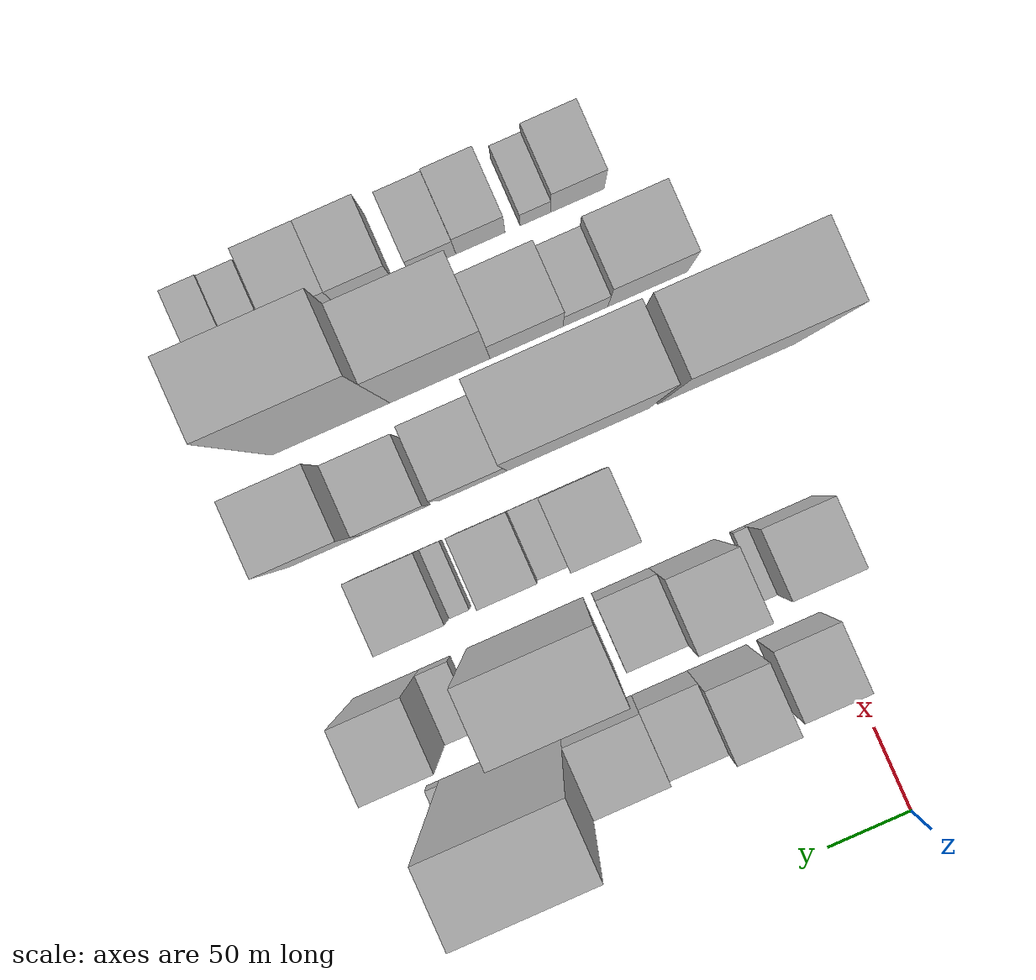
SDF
<sdf version="1.6">
 <world name="default">
  <model name="building_28">
   <static>1</static>
   <pose>100.0000 20.5680 0 0.000000 0.000000 0.000000</pose>
   <link name="link">
    <pose>0 0 34.50 0 0 0</pose>
    <collision name="collision"><geometry><box><size>40.0000 38.1749 69.0000</size></box></geometry></collision>
    <visual name="visual">
     <cast_shadows>0</cast_shadows>
     <geometry><box><size>40.0000 38.1749 69.0000</size></box></geometry>
     <material>
      <script>
       <uri>model://HANNAS_wall/materials/scripts</uri>
       <uri>model://HANNAS_wall/materials/textures</uri>
       <name>vrc/HANNAS_wall</name>
      </script>
     </material>
    </visual>
   </link>
  </model>
  <model name="building_29">
   <static>1</static>
   <pose>100.0000 63.3625 0 0.000000 0.000000 0.000000</pose>
   <link name="link">
    <pose>0 0 49.50 0 0 0</pose>
    <collision name="collision"><geometry><box><size>40.0000 35.4141 99.0000</size></box></geometry></collision>
    <visual name="visual">
     <cast_shadows>0</cast_shadows>
     <geometry><box><size>40.0000 35.4141 99.0000</size></box></geometry>
     <material>
      <script>
       <uri>model://HANNAS_wall/materials/scripts</uri>
       <uri>model://HANNAS_wall/materials/textures</uri>
       <name>vrc/HANNAS_wall</name>
      </script>
     </material>
    </visual>
   </link>
  </model>
  <model name="building_30">
   <static>1</static>
   <pose>100.0000 97.8033 0 0.000000 0.000000 0.000000</pose>
   <link name="link">
    <pose>0 0 31.50 0 0 0</pose>
    <collision name="collision"><geometry><box><size>40.0000 33.4676 63.0000</size></box></geometry></collision>
    <visual name="visual">
     <cast_shadows>0</cast_shadows>
     <geometry><box><size>40.0000 33.4676 63.0000</size></box></geometry>
     <material>
      <script>
       <uri>model://HANNAS_wall/materials/scripts</uri>
       <uri>model://HANNAS_wall/materials/textures</uri>
       <name>vrc/HANNAS_wall</name>
      </script>
     </material>
    </visual>
   </link>
  </model>
  <model name="building_31">
   <static>1</static>
   <pose>100.0000 135.9520 0 0.000000 0.000000 0.000000</pose>
   <link name="link">
    <pose>0 0 39.00 0 0 0</pose>
    <collision name="collision"><geometry><box><size>40.0000 42.8297 78.0000</size></box></geometry></collision>
    <visual name="visual">
     <cast_shadows>0</cast_shadows>
     <geometry><box><size>40.0000 42.8297 78.0000</size></box></geometry>
     <material>
      <script>
       <uri>model://HANNAS_wall/materials/scripts</uri>
       <uri>model://HANNAS_wall/materials/textures</uri>
       <name>vrc/HANNAS_wall</name>
      </script>
     </material>
    </visual>
   </link>
  </model>
  <model name="building_32">
   <static>1</static>
   <pose>100.0000 193.5673 0 0.000000 0.000000 0.000000</pose>
   <link name="link">
    <pose>0 0 108.00 0 0 0</pose>
    <collision name="collision"><geometry><box><size>40.0000 72.4009 216.0000</size></box></geometry></collision>
    <visual name="visual">
     <cast_shadows>0</cast_shadows>
     <geometry><box><size>40.0000 72.4009 216.0000</size></box></geometry>
     <material>
      <script>
       <uri>model://HANNAS_wall/materials/scripts</uri>
       <uri>model://HANNAS_wall/materials/textures</uri>
       <name>vrc/HANNAS_wall</name>
      </script>
     </material>
    </visual>
   </link>
  </model>
  <model name="building_33">
   <static>1</static>
   <pose>100.0000 233.4649 0 0.000000 0.000000 0.000000</pose>
   <link name="link">
    <pose>0 0 9.00 0 0 0</pose>
    <collision name="collision"><geometry><box><size>40.0000 7.3943 18.0000</size></box></geometry></collision>
    <visual name="visual">
     <cast_shadows>0</cast_shadows>
     <geometry><box><size>40.0000 7.3943 18.0000</size></box></geometry>
     <material>
      <script>
       <uri>model://HANNAS_wall/materials/scripts</uri>
       <uri>model://HANNAS_wall/materials/textures</uri>
       <name>vrc/HANNAS_wall</name>
      </script>
     </material>
    </visual>
   </link>
  </model>
  <model name="building_79">
   <static>1</static>
   <pose>160.0000 -0.0028 0 0.000000 0.000000 0.000000</pose>
   <link name="link">
    <pose>0 0 37.50 0 0 0</pose>
    <collision name="collision"><geometry><box><size>40.0000 41.6627 75.0000</size></box></geometry></collision>
    <visual name="visual">
     <cast_shadows>0</cast_shadows>
     <geometry><box><size>40.0000 41.6627 75.0000</size></box></geometry>
     <material>
      <script>
       <uri>model://HANNAS_wall/materials/scripts</uri>
       <uri>model://HANNAS_wall/materials/textures</uri>
       <name>vrc/HANNAS_wall</name>
      </script>
     </material>
    </visual>
   </link>
  </model>
  <model name="building_80">
   <static>1</static>
   <pose>160.0000 25.1377 0 0.000000 0.000000 0.000000</pose>
   <link name="link">
    <pose>0 0 9.00 0 0 0</pose>
    <collision name="collision"><geometry><box><size>40.0000 8.6183 18.0000</size></box></geometry></collision>
    <visual name="visual">
     <cast_shadows>0</cast_shadows>
     <geometry><box><size>40.0000 8.6183 18.0000</size></box></geometry>
     <material>
      <script>
       <uri>model://HANNAS_wall/materials/scripts</uri>
       <uri>model://HANNAS_wall/materials/textures</uri>
       <name>vrc/HANNAS_wall</name>
      </script>
     </material>
    </visual>
   </link>
  </model>
  <model name="building_81">
   <static>1</static>
   <pose>160.0000 58.0273 0 0.000000 0.000000 0.000000</pose>
   <link name="link">
    <pose>0 0 61.50 0 0 0</pose>
    <collision name="collision"><geometry><box><size>40.0000 39.1610 123.0000</size></box></geometry></collision>
    <visual name="visual">
     <cast_shadows>0</cast_shadows>
     <geometry><box><size>40.0000 39.1610 123.0000</size></box></geometry>
     <material>
      <script>
       <uri>model://HANNAS_wall/materials/scripts</uri>
       <uri>model://HANNAS_wall/materials/textures</uri>
       <name>vrc/HANNAS_wall</name>
      </script>
     </material>
    </visual>
   </link>
  </model>
  <model name="building_82">
   <static>1</static>
   <pose>160.0000 94.8372 0 0.000000 0.000000 0.000000</pose>
   <link name="link">
    <pose>0 0 33.00 0 0 0</pose>
    <collision name="collision"><geometry><box><size>40.0000 34.4588 66.0000</size></box></geometry></collision>
    <visual name="visual">
     <cast_shadows>0</cast_shadows>
     <geometry><box><size>40.0000 34.4588 66.0000</size></box></geometry>
     <material>
      <script>
       <uri>model://HANNAS_wall/materials/scripts</uri>
       <uri>model://HANNAS_wall/materials/textures</uri>
       <name>vrc/HANNAS_wall</name>
      </script>
     </material>
    </visual>
   </link>
  </model>
  <model name="building_83">
   <static>1</static>
   <pose>160.0000 151.8277 0 0.000000 0.000000 0.000000</pose>
   <link name="link">
    <pose>0 0 96.00 0 0 0</pose>
    <collision name="collision"><geometry><box><size>40.0000 69.5223 192.0000</size></box></geometry></collision>
    <visual name="visual">
     <cast_shadows>0</cast_shadows>
     <geometry><box><size>40.0000 69.5223 192.0000</size></box></geometry>
     <material>
      <script>
       <uri>model://HANNAS_wall/materials/scripts</uri>
       <uri>model://HANNAS_wall/materials/textures</uri>
       <name>vrc/HANNAS_wall</name>
      </script>
     </material>
    </visual>
   </link>
  </model>
  <model name="building_84">
   <static>1</static>
   <pose>160.0000 205.9850 0 0.000000 0.000000 0.000000</pose>
   <link name="link">
    <pose>0 0 16.50 0 0 0</pose>
    <collision name="collision"><geometry><box><size>40.0000 18.7923 33.0000</size></box></geometry></collision>
    <visual name="visual">
     <cast_shadows>0</cast_shadows>
     <geometry><box><size>40.0000 18.7923 33.0000</size></box></geometry>
     <material>
      <script>
       <uri>model://HANNAS_wall/materials/scripts</uri>
       <uri>model://HANNAS_wall/materials/textures</uri>
       <name>vrc/HANNAS_wall</name>
      </script>
     </material>
    </visual>
   </link>
  </model>
  <model name="building_85">
   <static>1</static>
   <pose>160.0000 234.8938 0 0.000000 0.000000 0.000000</pose>
   <link name="link">
    <pose>0 0 63.00 0 0 0</pose>
    <collision name="collision"><geometry><box><size>40.0000 39.0253 126.0000</size></box></geometry></collision>
    <visual name="visual">
     <cast_shadows>0</cast_shadows>
     <geometry><box><size>40.0000 39.0253 126.0000</size></box></geometry>
     <material>
      <script>
       <uri>model://HANNAS_wall/materials/scripts</uri>
       <uri>model://HANNAS_wall/materials/textures</uri>
       <name>vrc/HANNAS_wall</name>
      </script>
     </material>
    </visual>
   </link>
  </model>
  <model name="building_120">
   <static>1</static>
   <pose>220.0000 98.4463 0 0.000000 0.000000 0.000000</pose>
   <link name="link">
    <pose>0 0 52.50 0 0 0</pose>
    <collision name="collision"><geometry><box><size>40.0000 37.8514 105.0000</size></box></geometry></collision>
    <visual name="visual">
     <cast_shadows>0</cast_shadows>
     <geometry><box><size>40.0000 37.8514 105.0000</size></box></geometry>
     <material>
      <script>
       <uri>model://HANNAS_wall/materials/scripts</uri>
       <uri>model://HANNAS_wall/materials/textures</uri>
       <name>vrc/HANNAS_wall</name>
      </script>
     </material>
    </visual>
   </link>
  </model>
  <model name="building_121">
   <static>1</static>
   <pose>220.0000 126.3994 0 0.000000 0.000000 0.000000</pose>
   <link name="link">
    <pose>0 0 16.50 0 0 0</pose>
    <collision name="collision"><geometry><box><size>40.0000 18.0549 33.0000</size></box></geometry></collision>
    <visual name="visual">
     <cast_shadows>0</cast_shadows>
     <geometry><box><size>40.0000 18.0549 33.0000</size></box></geometry>
     <material>
      <script>
       <uri>model://HANNAS_wall/materials/scripts</uri>
       <uri>model://HANNAS_wall/materials/textures</uri>
       <name>vrc/HANNAS_wall</name>
      </script>
     </material>
    </visual>
   </link>
  </model>
  <model name="building_122">
   <static>1</static>
   <pose>220.0000 152.2395 0 0.000000 0.000000 0.000000</pose>
   <link name="link">
    <pose>0 0 33.00 0 0 0</pose>
    <collision name="collision"><geometry><box><size>40.0000 33.6254 66.0000</size></box></geometry></collision>
    <visual name="visual">
     <cast_shadows>0</cast_shadows>
     <geometry><box><size>40.0000 33.6254 66.0000</size></box></geometry>
     <material>
      <script>
       <uri>model://HANNAS_wall/materials/scripts</uri>
       <uri>model://HANNAS_wall/materials/textures</uri>
       <name>vrc/HANNAS_wall</name>
      </script>
     </material>
    </visual>
   </link>
  </model>
  <model name="building_123">
   <static>1</static>
   <pose>220.0000 180.9071 0 0.000000 0.000000 0.000000</pose>
   <link name="link">
    <pose>0 0 13.50 0 0 0</pose>
    <collision name="collision"><geometry><box><size>40.0000 11.7097 27.0000</size></box></geometry></collision>
    <visual name="visual">
     <cast_shadows>0</cast_shadows>
     <geometry><box><size>40.0000 11.7097 27.0000</size></box></geometry>
     <material>
      <script>
       <uri>model://HANNAS_wall/materials/scripts</uri>
       <uri>model://HANNAS_wall/materials/textures</uri>
       <name>vrc/HANNAS_wall</name>
      </script>
     </material>
    </visual>
   </link>
  </model>
  <model name="building_124">
   <static>1</static>
   <pose>220.0000 206.4666 0 0.000000 0.000000 0.000000</pose>
   <link name="link">
    <pose>0 0 36.00 0 0 0</pose>
    <collision name="collision"><geometry><box><size>40.0000 39.4092 72.0000</size></box></geometry></collision>
    <visual name="visual">
     <cast_shadows>0</cast_shadows>
     <geometry><box><size>40.0000 39.4092 72.0000</size></box></geometry>
     <material>
      <script>
       <uri>model://HANNAS_wall/materials/scripts</uri>
       <uri>model://HANNAS_wall/materials/textures</uri>
       <name>vrc/HANNAS_wall</name>
      </script>
     </material>
    </visual>
   </link>
  </model>
  <model name="building_167">
   <static>1</static>
   <pose>280.0000 -3.9816 0 0.000000 0.000000 0.000000</pose>
   <link name="link">
    <pose>0 0 108.00 0 0 0</pose>
    <collision name="collision"><geometry><box><size>40.0000 81.8626 216.0000</size></box></geometry></collision>
    <visual name="visual">
     <cast_shadows>0</cast_shadows>
     <geometry><box><size>40.0000 81.8626 216.0000</size></box></geometry>
     <material>
      <script>
       <uri>model://HANNAS_wall/materials/scripts</uri>
       <uri>model://HANNAS_wall/materials/textures</uri>
       <name>vrc/HANNAS_wall</name>
      </script>
     </material>
    </visual>
   </link>
  </model>
  <model name="building_168">
   <static>1</static>
   <pose>280.0000 84.4122 0 0.000000 0.000000 0.000000</pose>
   <link name="link">
    <pose>0 0 106.50 0 0 0</pose>
    <collision name="collision"><geometry><box><size>40.0000 84.9250 213.0000</size></box></geometry></collision>
    <visual name="visual">
     <cast_shadows>0</cast_shadows>
     <geometry><box><size>40.0000 84.9250 213.0000</size></box></geometry>
     <material>
      <script>
       <uri>model://HANNAS_wall/materials/scripts</uri>
       <uri>model://HANNAS_wall/materials/textures</uri>
       <name>vrc/HANNAS_wall</name>
      </script>
     </material>
    </visual>
   </link>
  </model>
  <model name="building_169">
   <static>1</static>
   <pose>280.0000 146.9369 0 0.000000 0.000000 0.000000</pose>
   <link name="link">
    <pose>0 0 52.50 0 0 0</pose>
    <collision name="collision"><geometry><box><size>40.0000 40.1244 105.0000</size></box></geometry></collision>
    <visual name="visual">
     <cast_shadows>0</cast_shadows>
     <geometry><box><size>40.0000 40.1244 105.0000</size></box></geometry>
     <material>
      <script>
       <uri>model://HANNAS_wall/materials/scripts</uri>
       <uri>model://HANNAS_wall/materials/textures</uri>
       <name>vrc/HANNAS_wall</name>
      </script>
     </material>
    </visual>
   </link>
  </model>
  <model name="building_170">
   <static>1</static>
   <pose>280.0000 192.9327 0 0.000000 0.000000 0.000000</pose>
   <link name="link">
    <pose>0 0 34.50 0 0 0</pose>
    <collision name="collision"><geometry><box><size>40.0000 39.8671 69.0000</size></box></geometry></collision>
    <visual name="visual">
     <cast_shadows>0</cast_shadows>
     <geometry><box><size>40.0000 39.8671 69.0000</size></box></geometry>
     <material>
      <script>
       <uri>model://HANNAS_wall/materials/scripts</uri>
       <uri>model://HANNAS_wall/materials/textures</uri>
       <name>vrc/HANNAS_wall</name>
      </script>
     </material>
    </visual>
   </link>
  </model>
  <model name="building_171">
   <static>1</static>
   <pose>280.0000 234.9826 0 0.000000 0.000000 0.000000</pose>
   <link name="link">
    <pose>0 0 66.00 0 0 0</pose>
    <collision name="collision"><geometry><box><size>40.0000 44.2328 132.0000</size></box></geometry></collision>
    <visual name="visual">
     <cast_shadows>0</cast_shadows>
     <geometry><box><size>40.0000 44.2328 132.0000</size></box></geometry>
     <material>
      <script>
       <uri>model://HANNAS_wall/materials/scripts</uri>
       <uri>model://HANNAS_wall/materials/textures</uri>
       <name>vrc/HANNAS_wall</name>
      </script>
     </material>
    </visual>
   </link>
  </model>
  <model name="building_217">
   <static>1</static>
   <pose>340.0000 16.5200 0 0.000000 0.000000 0.000000</pose>
   <link name="link">
    <pose>0 0 40.50 0 0 0</pose>
    <collision name="collision"><geometry><box><size>40.0000 47.6952 81.0000</size></box></geometry></collision>
    <visual name="visual">
     <cast_shadows>0</cast_shadows>
     <geometry><box><size>40.0000 47.6952 81.0000</size></box></geometry>
     <material>
      <script>
       <uri>model://HANNAS_wall/materials/scripts</uri>
       <uri>model://HANNAS_wall/materials/textures</uri>
       <name>vrc/HANNAS_wall</name>
      </script>
     </material>
    </visual>
   </link>
  </model>
  <model name="building_218">
   <static>1</static>
   <pose>340.0000 53.7636 0 0.000000 0.000000 0.000000</pose>
   <link name="link">
    <pose>0 0 25.50 0 0 0</pose>
    <collision name="collision"><geometry><box><size>40.0000 26.7921 51.0000</size></box></geometry></collision>
    <visual name="visual">
     <cast_shadows>0</cast_shadows>
     <geometry><box><size>40.0000 26.7921 51.0000</size></box></geometry>
     <material>
      <script>
       <uri>model://HANNAS_wall/materials/scripts</uri>
       <uri>model://HANNAS_wall/materials/textures</uri>
       <name>vrc/HANNAS_wall</name>
      </script>
     </material>
    </visual>
   </link>
  </model>
  <model name="building_219">
   <static>1</static>
   <pose>340.0000 88.9568 0 0.000000 0.000000 0.000000</pose>
   <link name="link">
    <pose>0 0 37.50 0 0 0</pose>
    <collision name="collision"><geometry><box><size>40.0000 43.5942 75.0000</size></box></geometry></collision>
    <visual name="visual">
     <cast_shadows>0</cast_shadows>
     <geometry><box><size>40.0000 43.5942 75.0000</size></box></geometry>
     <material>
      <script>
       <uri>model://HANNAS_wall/materials/scripts</uri>
       <uri>model://HANNAS_wall/materials/textures</uri>
       <name>vrc/HANNAS_wall</name>
      </script>
     </material>
    </visual>
   </link>
  </model>
  <model name="building_220">
   <static>1</static>
   <pose>340.0000 140.6937 0 0.000000 0.000000 0.000000</pose>
   <link name="link">
    <pose>0 0 82.50 0 0 0</pose>
    <collision name="collision"><geometry><box><size>40.0000 59.8796 165.0000</size></box></geometry></collision>
    <visual name="visual">
     <cast_shadows>0</cast_shadows>
     <geometry><box><size>40.0000 59.8796 165.0000</size></box></geometry>
     <material>
      <script>
       <uri>model://HANNAS_wall/materials/scripts</uri>
       <uri>model://HANNAS_wall/materials/textures</uri>
       <name>vrc/HANNAS_wall</name>
      </script>
     </material>
    </visual>
   </link>
  </model>
  <model name="building_221">
   <static>1</static>
   <pose>340.0000 205.9894 0 0.000000 0.000000 0.000000</pose>
   <link name="link">
    <pose>0 0 112.50 0 0 0</pose>
    <collision name="collision"><geometry><box><size>40.0000 70.7118 225.0000</size></box></geometry></collision>
    <visual name="visual">
     <cast_shadows>0</cast_shadows>
     <geometry><box><size>40.0000 70.7118 225.0000</size></box></geometry>
     <material>
      <script>
       <uri>model://HANNAS_wall/materials/scripts</uri>
       <uri>model://HANNAS_wall/materials/textures</uri>
       <name>vrc/HANNAS_wall</name>
      </script>
     </material>
    </visual>
   </link>
  </model>
  <model name="building_263">
   <static>1</static>
   <pose>400.0000 32.0837 0 0.000000 0.000000 0.000000</pose>
   <link name="link">
    <pose>0 0 28.50 0 0 0</pose>
    <collision name="collision"><geometry><box><size>40.0000 31.9016 57.0000</size></box></geometry></collision>
    <visual name="visual">
     <cast_shadows>0</cast_shadows>
     <geometry><box><size>40.0000 31.9016 57.0000</size></box></geometry>
     <material>
      <script>
       <uri>model://HANNAS_wall/materials/scripts</uri>
       <uri>model://HANNAS_wall/materials/textures</uri>
       <name>vrc/HANNAS_wall</name>
      </script>
     </material>
    </visual>
   </link>
  </model>
  <model name="building_264">
   <static>1</static>
   <pose>400.0000 57.1484 0 0.000000 0.000000 0.000000</pose>
   <link name="link">
    <pose>0 0 18.00 0 0 0</pose>
    <collision name="collision"><geometry><box><size>40.0000 18.2278 36.0000</size></box></geometry></collision>
    <visual name="visual">
     <cast_shadows>0</cast_shadows>
     <geometry><box><size>40.0000 18.2278 36.0000</size></box></geometry>
     <material>
      <script>
       <uri>model://HANNAS_wall/materials/scripts</uri>
       <uri>model://HANNAS_wall/materials/textures</uri>
       <name>vrc/HANNAS_wall</name>
      </script>
     </material>
    </visual>
   </link>
  </model>
  <model name="building_265">
   <static>1</static>
   <pose>400.0000 89.9898 0 0.000000 0.000000 0.000000</pose>
   <link name="link">
    <pose>0 0 27.00 0 0 0</pose>
    <collision name="collision"><geometry><box><size>40.0000 29.4550 54.0000</size></box></geometry></collision>
    <visual name="visual">
     <cast_shadows>0</cast_shadows>
     <geometry><box><size>40.0000 29.4550 54.0000</size></box></geometry>
     <material>
      <script>
       <uri>model://HANNAS_wall/materials/scripts</uri>
       <uri>model://HANNAS_wall/materials/textures</uri>
       <name>vrc/HANNAS_wall</name>
      </script>
     </material>
    </visual>
   </link>
  </model>
  <model name="building_266">
   <static>1</static>
   <pose>400.0000 118.2662 0 0.000000 0.000000 0.000000</pose>
   <link name="link">
    <pose>0 0 24.00 0 0 0</pose>
    <collision name="collision"><geometry><box><size>40.0000 27.0978 48.0000</size></box></geometry></collision>
    <visual name="visual">
     <cast_shadows>0</cast_shadows>
     <geometry><box><size>40.0000 27.0978 48.0000</size></box></geometry>
     <material>
      <script>
       <uri>model://HANNAS_wall/materials/scripts</uri>
       <uri>model://HANNAS_wall/materials/textures</uri>
       <name>vrc/HANNAS_wall</name>
      </script>
     </material>
    </visual>
   </link>
  </model>
  <model name="building_267">
   <static>1</static>
   <pose>400.0000 158.5385 0 0.000000 0.000000 0.000000</pose>
   <link name="link">
    <pose>0 0 33.00 0 0 0</pose>
    <collision name="collision"><geometry><box><size>40.0000 33.4467 66.0000</size></box></geometry></collision>
    <visual name="visual">
     <cast_shadows>0</cast_shadows>
     <geometry><box><size>40.0000 33.4467 66.0000</size></box></geometry>
     <material>
      <script>
       <uri>model://HANNAS_wall/materials/scripts</uri>
       <uri>model://HANNAS_wall/materials/textures</uri>
       <name>vrc/HANNAS_wall</name>
      </script>
     </material>
    </visual>
   </link>
  </model>
  <model name="building_268">
   <static>1</static>
   <pose>400.0000 192.7314 0 0.000000 0.000000 0.000000</pose>
   <link name="link">
    <pose>0 0 33.00 0 0 0</pose>
    <collision name="collision"><geometry><box><size>40.0000 34.9391 66.0000</size></box></geometry></collision>
    <visual name="visual">
     <cast_shadows>0</cast_shadows>
     <geometry><box><size>40.0000 34.9391 66.0000</size></box></geometry>
     <material>
      <script>
       <uri>model://HANNAS_wall/materials/scripts</uri>
       <uri>model://HANNAS_wall/materials/textures</uri>
       <name>vrc/HANNAS_wall</name>
      </script>
     </material>
    </visual>
   </link>
  </model>
  <model name="building_269">
   <static>1</static>
   <pose>400.0000 224.7791 0 0.000000 0.000000 0.000000</pose>
   <link name="link">
    <pose>0 0 18.00 0 0 0</pose>
    <collision name="collision"><geometry><box><size>40.0000 21.1562 36.0000</size></box></geometry></collision>
    <visual name="visual">
     <cast_shadows>0</cast_shadows>
     <geometry><box><size>40.0000 21.1562 36.0000</size></box></geometry>
     <material>
      <script>
       <uri>model://HANNAS_wall/materials/scripts</uri>
       <uri>model://HANNAS_wall/materials/textures</uri>
       <name>vrc/HANNAS_wall</name>
      </script>
     </material>
    </visual>
   </link>
  </model>
  <model name="building_270">
   <static>1</static>
   <pose>400.0000 245.7530 0 0.000000 0.000000 0.000000</pose>
   <link name="link">
    <pose>0 0 19.50 0 0 0</pose>
    <collision name="collision"><geometry><box><size>40.0000 20.7917 39.0000</size></box></geometry></collision>
    <visual name="visual">
     <cast_shadows>0</cast_shadows>
     <geometry><box><size>40.0000 20.7917 39.0000</size></box></geometry>
     <material>
      <script>
       <uri>model://HANNAS_wall/materials/scripts</uri>
       <uri>model://HANNAS_wall/materials/textures</uri>
       <name>vrc/HANNAS_wall</name>
      </script>
     </material>
    </visual>
   </link>
  </model>
 </world>
</sdf>
